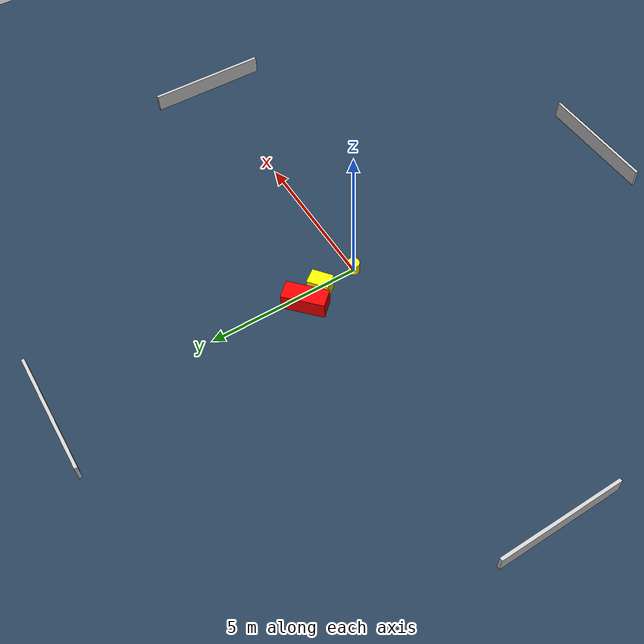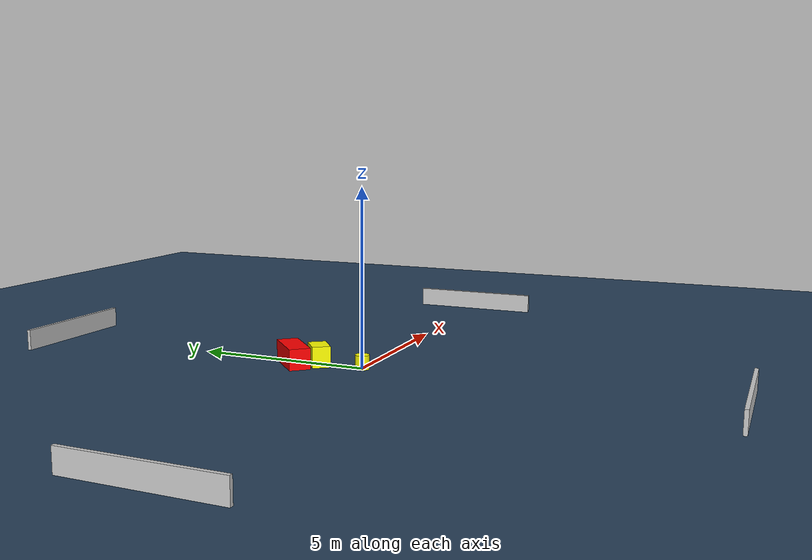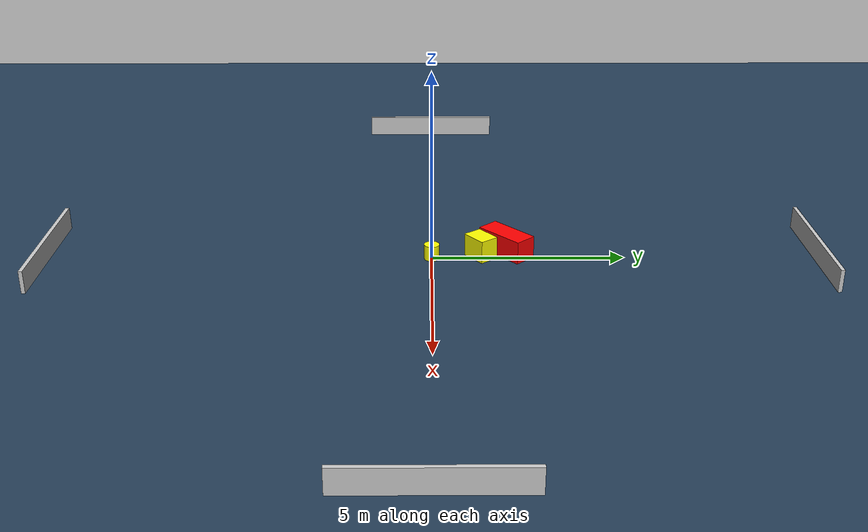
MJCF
<?xml version="1.0" ?>
<mujoco model="generated_environment">
  <option timestep="0.01" integrator="RK4" cone="elliptic"/>
  <default>
    <geom density="1"/>
  </default>
  <asset>
    <texture builtin="gradient" height="3072" name="skybox" rgb1="0.3 0.5 0.7" rgb2="0 0 0" type="skybox" width="512"/>
    <texture builtin="checker" height="300" name="groundplane" rgb1="0.2 0.3 0.4" rgb2="0.1 0.2 0.3" type="2d" width="300"/>
    <material name="groundplane" reflectance="0.2" texrepeat="5 5" texture="groundplane"/>
  </asset>
  <worldbody>
    <light dir="0 0 -1" directional="true" pos="0 0 1.5"/>
    <geom condim="3" friction="0.5 0.005 0.001" material="groundplane" name="floor" pos="0 0 0" size="0 0 0.05" type="plane"/>
    <body name="walls">
      <geom name="wall_1" condim="4" pos="-10.0 0.0 0.3" rgba="0.800000011920929 0.800000011920929 0.800000011920929 1.0" size="0.05 2.0 0.3" type="box"/>
      <geom name="wall_2" condim="4" pos="10.0 0.0 0.3" rgba="0.800000011920929 0.800000011920929 0.800000011920929 1.0" size="0.05 2.0 0.3" type="box"/>
      <geom name="wall_3" condim="4" pos="0.0 -10.0 0.3" rgba="0.800000011920929 0.800000011920929 0.800000011920929 1.0" size="2.0 0.05 0.3" type="box"/>
      <geom name="wall_4" condim="4" pos="0.0 10.0 0.3" rgba="0.800000011920929 0.800000011920929 0.800000011920929 1.0" size="2.0 0.05 0.3" type="box"/>
    </body>
    <body name="robot">
      <joint name="joint_x" type="slide" pos="0 0 0" axis="1 0 0"/>
      <joint name="joint_y" type="slide" pos="0 0 0" axis="0 1 0"/>
      <geom name="robot" type="cylinder" pos="0.0 0.0 0.2" size="0.2 0.2 0.0" mass="5.0" friction="1.0 0.005 0.0001" condim="4" rgba="1.0 1.0 0.0 1.0"/>
    </body>
    <body name="obstacle_1_movable">
      <geom name="obstacle_1_movable" condim="4" pos="-0.1019626370719648 1.2776439838409468 0.3" euler="0 0 37.5965458950955" friction="0.0 0.005 0.001" rgba="1.0 1.0 0.0 1.0" size="0.3507974340104048 0.25709524385891636 0.3" type="box" mass="0.1"/>
      <joint type="free"/>
    </body>
    <body name="obstacle_2_static">
      <geom name="obstacle_2_static" condim="4" pos="-0.3424591238155083 1.9572914892227373 0.3" euler="0 0 132.88428551544794" friction="0.0 0.005 0.001" rgba="1.0 0.0 0.0 1.0" size="0.3039239680275597 0.694736584056682 0.3" type="box"/>
    </body>
  </worldbody>
  <actuator>
    <motor name="actuator_x" joint="joint_x" gear="1" ctrlrange="-1 1"/>
    <motor name="actuator_y" joint="joint_y" gear="1" ctrlrange="-1 1"/>
  </actuator>
</mujoco>
